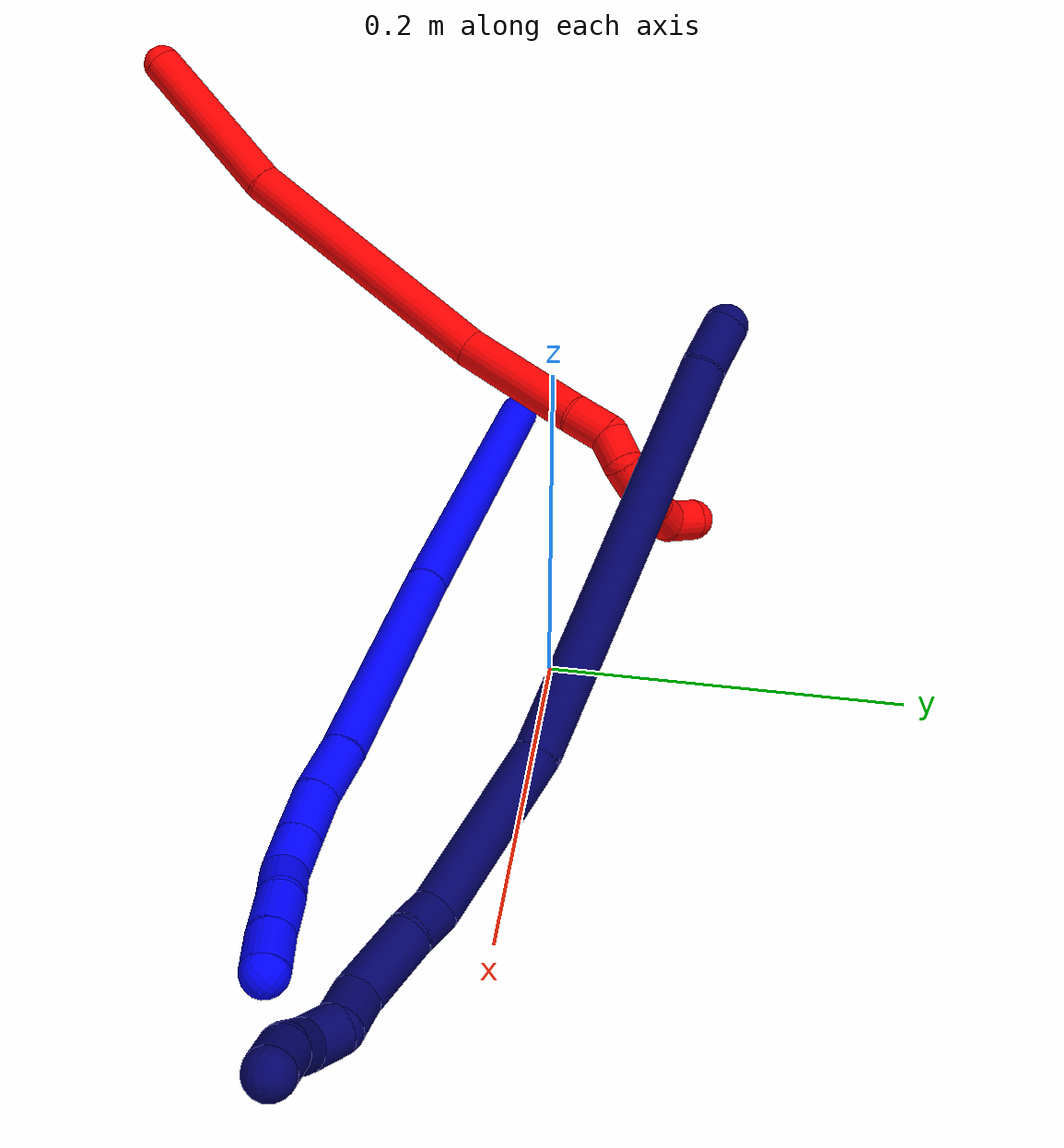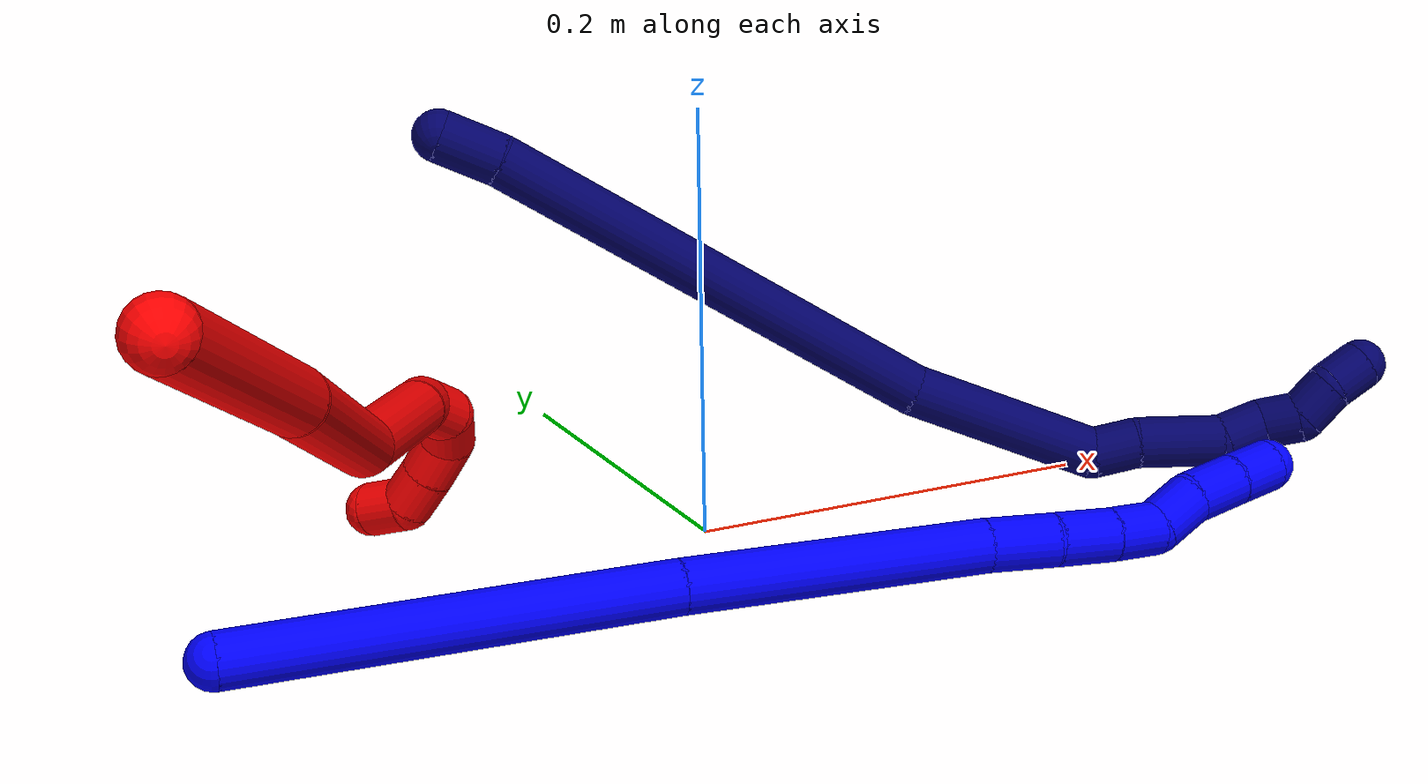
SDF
<sdf version="1.7">
 <world name="default">
  <model name="1">
   <static>0</static>
   <link name="1">
    <collision name="collision-cylinder-e_1_1_4">
     <pose>0.097182 -0.009251 -0.01038 2.41361 1.42869 2.31366</pose>
     <geometry><cylinder><radius>0.0125</radius><length>0.196344</length></cylinder></geometry>
     <surface>
      <friction><ode><mu>1.16</mu><mu2>1.16</mu2><slip1>0</slip1><slip2>0</slip2></ode></friction>
      <contact><ode><kp>1e+06</kp><kd>1</kd><max_vel>0</max_vel><min_depth>0.001</min_depth></ode></contact>
     </surface>
    </collision>
    <visual name="visual-cylinder-e_1_1_4">
     <pose>0.097182 -0.009251 -0.01038 2.41361 1.42869 2.31366</pose>
     <geometry><cylinder><radius>0.0125</radius><length>0.196344</length></cylinder></geometry>
     <material><ambient>0 0 1 1</ambient></material>
    </visual>
    <collision name="collision-cylinder-e_2_4_5">
     <pose>0.264811 -0.026251 -0.030454 2.46732 1.39642 2.35031</pose>
     <geometry><cylinder><radius>0.0125</radius><length>0.143063</length></cylinder></geometry>
     <surface>
      <friction><ode><mu>1.16</mu><mu2>1.16</mu2><slip1>0</slip1><slip2>0</slip2></ode></friction>
      <contact><ode><kp>1e+06</kp><kd>1</kd><max_vel>0</max_vel><min_depth>0.001</min_depth></ode></contact>
     </surface>
    </collision>
    <visual name="visual-cylinder-e_2_4_5">
     <pose>0.264811 -0.026251 -0.030454 2.46732 1.39642 2.35031</pose>
     <geometry><cylinder><radius>0.0125</radius><length>0.143063</length></cylinder></geometry>
     <material><ambient>0 0 1 1</ambient></material>
    </visual>
    <collision name="collision-cylinder-e_3_5_6">
     <pose>0.351437 -0.036861 -0.041654 2.05508 1.37352 1.87197</pose>
     <geometry><cylinder><radius>0.0125</radius><length>0.032998</length></cylinder></geometry>
     <surface>
      <friction><ode><mu>1.16</mu><mu2>1.16</mu2><slip1>0</slip1><slip2>0</slip2></ode></friction>
      <contact><ode><kp>1e+06</kp><kd>1</kd><max_vel>0</max_vel><min_depth>0.001</min_depth></ode></contact>
     </surface>
    </collision>
    <visual name="visual-cylinder-e_3_5_6">
     <pose>0.351437 -0.036861 -0.041654 2.05508 1.37352 1.87197</pose>
     <geometry><cylinder><radius>0.0125</radius><length>0.032998</length></cylinder></geometry>
     <material><ambient>0 0 1 1</ambient></material>
    </visual>
    <collision name="collision-cylinder-e_4_6_7">
     <pose>0.381856 -0.041549 -0.046142 2.59228 1.33001 2.45166</pose>
     <geometry><cylinder><radius>0.0125</radius><length>0.029324</length></cylinder></geometry>
     <surface>
      <friction><ode><mu>1.16</mu><mu2>1.16</mu2><slip1>0</slip1><slip2>0</slip2></ode></friction>
      <contact><ode><kp>1e+06</kp><kd>1</kd><max_vel>0</max_vel><min_depth>0.001</min_depth></ode></contact>
     </surface>
    </collision>
    <visual name="visual-cylinder-e_4_6_7">
     <pose>0.381856 -0.041549 -0.046142 2.59228 1.33001 2.45166</pose>
     <geometry><cylinder><radius>0.0125</radius><length>0.029324</length></cylinder></geometry>
     <material><ambient>0 0 1 1</ambient></material>
    </visual>
    <collision name="collision-cylinder-e_5_7_8">
     <pose>0.407766 -0.044249 -0.051475 2.78546 1.35911 2.70324</pose>
     <geometry><cylinder><radius>0.0125</radius><length>0.023875</length></cylinder></geometry>
     <surface>
      <friction><ode><mu>1.16</mu><mu2>1.16</mu2><slip1>0</slip1><slip2>0</slip2></ode></friction>
      <contact><ode><kp>1e+06</kp><kd>1</kd><max_vel>0</max_vel><min_depth>0.001</min_depth></ode></contact>
     </surface>
    </collision>
    <visual name="visual-cylinder-e_5_7_8">
     <pose>0.407766 -0.044249 -0.051475 2.78546 1.35911 2.70324</pose>
     <geometry><cylinder><radius>0.0125</radius><length>0.023875</length></cylinder></geometry>
     <material><ambient>0 0 1 1</ambient></material>
    </visual>
    <collision name="collision-cylinder-e_6_8_9">
     <pose>0.430803 -0.040374 -0.055229 -1.85814 1.15986 -1.43954</pose>
     <geometry><cylinder><radius>0.0125</radius><length>0.024796</length></cylinder></geometry>
     <surface>
      <friction><ode><mu>1.16</mu><mu2>1.16</mu2><slip1>0</slip1><slip2>0</slip2></ode></friction>
      <contact><ode><kp>1e+06</kp><kd>1</kd><max_vel>0</max_vel><min_depth>0.001</min_depth></ode></contact>
     </surface>
    </collision>
    <visual name="visual-cylinder-e_6_8_9">
     <pose>0.430803 -0.040374 -0.055229 -1.85814 1.15986 -1.43954</pose>
     <geometry><cylinder><radius>0.0125</radius><length>0.024796</length></cylinder></geometry>
     <material><ambient>0 0 1 1</ambient></material>
    </visual>
    <collision name="collision-cylinder-e_7_9_10">
     <pose>0.454956 -0.033658 -0.059045 -2.4578 1.33211 -2.29115</pose>
     <geometry><cylinder><radius>0.0125</radius><length>0.026321</length></cylinder></geometry>
     <surface>
      <friction><ode><mu>1.16</mu><mu2>1.16</mu2><slip1>0</slip1><slip2>0</slip2></ode></friction>
      <contact><ode><kp>1e+06</kp><kd>1</kd><max_vel>0</max_vel><min_depth>0.001</min_depth></ode></contact>
     </surface>
    </collision>
    <visual name="visual-cylinder-e_7_9_10">
     <pose>0.454956 -0.033658 -0.059045 -2.4578 1.33211 -2.29115</pose>
     <geometry><cylinder><radius>0.0125</radius><length>0.026321</length></cylinder></geometry>
     <material><ambient>0 0 1 1</ambient></material>
    </visual>
    <collision name="collision-cylinder-e_8_10_2">
     <pose>0.478834 -0.029885 -0.064489 -2.60405 1.26263 -2.42103</pose>
     <geometry><cylinder><radius>0.0125</radius><length>0.023278</length></cylinder></geometry>
     <surface>
      <friction><ode><mu>1.16</mu><mu2>1.16</mu2><slip1>0</slip1><slip2>0</slip2></ode></friction>
      <contact><ode><kp>1e+06</kp><kd>1</kd><max_vel>0</max_vel><min_depth>0.001</min_depth></ode></contact>
     </surface>
    </collision>
    <visual name="visual-cylinder-e_8_10_2">
     <pose>0.478834 -0.029885 -0.064489 -2.60405 1.26263 -2.42103</pose>
     <geometry><cylinder><radius>0.0125</radius><length>0.023278</length></cylinder></geometry>
     <material><ambient>0 0 1 1</ambient></material>
    </visual>
    <collision name="collision-sphere-2">
     <pose>0.489925 -0.028078 -0.067521 0 -0 0</pose>
     <geometry><sphere><radius>0.0125</radius></sphere></geometry>
     <surface>
      <friction><ode><mu>1.16</mu><mu2>1.16</mu2><slip1>0</slip1><slip2>0</slip2></ode></friction>
      <contact><ode><kp>1e+06</kp><kd>1</kd><max_vel>0</max_vel><min_depth>0.001</min_depth></ode></contact>
     </surface>
    </collision>
    <visual name="visual-sphere-2">
     <pose>0.489925 -0.028078 -0.067521 0 -0 0</pose>
     <geometry><sphere><radius>0.0125</radius></sphere></geometry>
     <material><ambient>0 0 1 1</ambient></material>
    </visual>
    <collision name="collision-sphere-10">
     <pose>0.467744 -0.031693 -0.061457 0 -0 0</pose>
     <geometry><sphere><radius>0.0125</radius></sphere></geometry>
     <surface>
      <friction><ode><mu>1.16</mu><mu2>1.16</mu2><slip1>0</slip1><slip2>0</slip2></ode></friction>
      <contact><ode><kp>1e+06</kp><kd>1</kd><max_vel>0</max_vel><min_depth>0.001</min_depth></ode></contact>
     </surface>
    </collision>
    <visual name="visual-sphere-10">
     <pose>0.467744 -0.031693 -0.061457 0 -0 0</pose>
     <geometry><sphere><radius>0.0125</radius></sphere></geometry>
     <material><ambient>0 0 1 1</ambient></material>
    </visual>
    <collision name="collision-sphere-9">
     <pose>0.442169 -0.035624 -0.056633 0 -0 0</pose>
     <geometry><sphere><radius>0.0125</radius></sphere></geometry>
     <surface>
      <friction><ode><mu>1.16</mu><mu2>1.16</mu2><slip1>0</slip1><slip2>0</slip2></ode></friction>
      <contact><ode><kp>1e+06</kp><kd>1</kd><max_vel>0</max_vel><min_depth>0.001</min_depth></ode></contact>
     </surface>
    </collision>
    <visual name="visual-sphere-9">
     <pose>0.442169 -0.035624 -0.056633 0 -0 0</pose>
     <geometry><sphere><radius>0.0125</radius></sphere></geometry>
     <material><ambient>0 0 1 1</ambient></material>
    </visual>
    <collision name="collision-sphere-4">
     <pose>0.194365 -0.018503 -0.020759 0 -0 0</pose>
     <geometry><sphere><radius>0.0125</radius></sphere></geometry>
     <surface>
      <friction><ode><mu>1.16</mu><mu2>1.16</mu2><slip1>0</slip1><slip2>0</slip2></ode></friction>
      <contact><ode><kp>1e+06</kp><kd>1</kd><max_vel>0</max_vel><min_depth>0.001</min_depth></ode></contact>
     </surface>
    </collision>
    <visual name="visual-sphere-4">
     <pose>0.194365 -0.018503 -0.020759 0 -0 0</pose>
     <geometry><sphere><radius>0.0125</radius></sphere></geometry>
     <material><ambient>0 0 1 1</ambient></material>
    </visual>
    <collision name="collision-sphere-1">
     <geometry><sphere><radius>0.0125</radius></sphere></geometry>
     <surface>
      <friction><ode><mu>1.16</mu><mu2>1.16</mu2><slip1>0</slip1><slip2>0</slip2></ode></friction>
      <contact><ode><kp>1e+06</kp><kd>1</kd><max_vel>0</max_vel><min_depth>0.001</min_depth></ode></contact>
     </surface>
    </collision>
    <visual name="visual-sphere-1">
     <geometry><sphere><radius>0.0125</radius></sphere></geometry>
     <material><ambient>0 0 1 1</ambient></material>
    </visual>
    <collision name="collision-sphere-8">
     <pose>0.419437 -0.045123 -0.053825 0 -0 0</pose>
     <geometry><sphere><radius>0.0125</radius></sphere></geometry>
     <surface>
      <friction><ode><mu>1.16</mu><mu2>1.16</mu2><slip1>0</slip1><slip2>0</slip2></ode></friction>
      <contact><ode><kp>1e+06</kp><kd>1</kd><max_vel>0</max_vel><min_depth>0.001</min_depth></ode></contact>
     </surface>
    </collision>
    <visual name="visual-sphere-8">
     <pose>0.419437 -0.045123 -0.053825 0 -0 0</pose>
     <geometry><sphere><radius>0.0125</radius></sphere></geometry>
     <material><ambient>0 0 1 1</ambient></material>
    </visual>
    <collision name="collision-sphere-5">
     <pose>0.335258 -0.033999 -0.040148 0 -0 0</pose>
     <geometry><sphere><radius>0.0125</radius></sphere></geometry>
     <surface>
      <friction><ode><mu>1.16</mu><mu2>1.16</mu2><slip1>0</slip1><slip2>0</slip2></ode></friction>
      <contact><ode><kp>1e+06</kp><kd>1</kd><max_vel>0</max_vel><min_depth>0.001</min_depth></ode></contact>
     </surface>
    </collision>
    <visual name="visual-sphere-5">
     <pose>0.335258 -0.033999 -0.040148 0 -0 0</pose>
     <geometry><sphere><radius>0.0125</radius></sphere></geometry>
     <material><ambient>0 0 1 1</ambient></material>
    </visual>
    <collision name="collision-sphere-6">
     <pose>0.367617 -0.039723 -0.04316 0 -0 0</pose>
     <geometry><sphere><radius>0.0125</radius></sphere></geometry>
     <surface>
      <friction><ode><mu>1.16</mu><mu2>1.16</mu2><slip1>0</slip1><slip2>0</slip2></ode></friction>
      <contact><ode><kp>1e+06</kp><kd>1</kd><max_vel>0</max_vel><min_depth>0.001</min_depth></ode></contact>
     </surface>
    </collision>
    <visual name="visual-sphere-6">
     <pose>0.367617 -0.039723 -0.04316 0 -0 0</pose>
     <geometry><sphere><radius>0.0125</radius></sphere></geometry>
     <material><ambient>0 0 1 1</ambient></material>
    </visual>
    <collision name="collision-sphere-7">
     <pose>0.396095 -0.043374 -0.049124 0 -0 0</pose>
     <geometry><sphere><radius>0.0125</radius></sphere></geometry>
     <surface>
      <friction><ode><mu>1.16</mu><mu2>1.16</mu2><slip1>0</slip1><slip2>0</slip2></ode></friction>
      <contact><ode><kp>1e+06</kp><kd>1</kd><max_vel>0</max_vel><min_depth>0.001</min_depth></ode></contact>
     </surface>
    </collision>
    <visual name="visual-sphere-7">
     <pose>0.396095 -0.043374 -0.049124 0 -0 0</pose>
     <geometry><sphere><radius>0.0125</radius></sphere></geometry>
     <material><ambient>0 0 1 1</ambient></material>
    </visual>
    <inertial>
     <pose>0.246599 -0.023292 -0.029552 0 -0 0</pose>
     <mass>0.5</mass>
     <inertia>
      <ixx>4.2e-05</ixx>
      <ixy>0</ixy>
      <ixz>0</ixz>
      <iyy>0.000989</iyy>
      <iyz>0</iyz>
      <izz>-0.000812</izz>
     </inertia>
    </inertial>
   </link>
   <pose>-0.244762 -0.054586 0.00603 0.863217 -0.163687 -0.157312</pose>
  </model>
  <model name="2">
   <static>0</static>
   <link name="2">
    <collision name="collision-cylinder-e_1_1_4">
     <pose>-0.015899 0.031822 -0.043032 -2.50485 -0.28877 0.83095</pose>
     <geometry><cylinder><radius>0.0125</radius><length>0.111663</length></cylinder></geometry>
     <surface>
      <friction><ode><mu>1.16</mu><mu2>1.16</mu2><slip1>0</slip1><slip2>0</slip2></ode></friction>
      <contact><ode><kp>1e+06</kp><kd>1</kd><max_vel>0</max_vel><min_depth>0.001</min_depth></ode></contact>
     </surface>
    </collision>
    <visual name="visual-cylinder-e_1_1_4">
     <pose>-0.015899 0.031822 -0.043032 -2.50485 -0.28877 0.83095</pose>
     <geometry><cylinder><radius>0.0125</radius><length>0.111663</length></cylinder></geometry>
     <material><ambient>1 0 0 1</ambient></material>
    </visual>
    <collision name="collision-cylinder-e_2_4_5">
     <pose>-0.044808 0.105408 -0.162466 -2.64133 -0.148308 0.565967</pose>
     <geometry><cylinder><radius>0.0125</radius><length>0.176078</length></cylinder></geometry>
     <surface>
      <friction><ode><mu>1.16</mu><mu2>1.16</mu2><slip1>0</slip1><slip2>0</slip2></ode></friction>
      <contact><ode><kp>1e+06</kp><kd>1</kd><max_vel>0</max_vel><min_depth>0.001</min_depth></ode></contact>
     </surface>
    </collision>
    <visual name="visual-cylinder-e_2_4_5">
     <pose>-0.044808 0.105408 -0.162466 -2.64133 -0.148308 0.565967</pose>
     <geometry><cylinder><radius>0.0125</radius><length>0.176078</length></cylinder></geometry>
     <material><ambient>1 0 0 1</ambient></material>
    </visual>
    <collision name="collision-cylinder-e_3_5_6">
     <pose>-0.073489 0.158426 -0.277221 -2.85618 -0.373685 1.84181</pose>
     <geometry><cylinder><radius>0.0125</radius><length>0.085863</length></cylinder></geometry>
     <surface>
      <friction><ode><mu>1.16</mu><mu2>1.16</mu2><slip1>0</slip1><slip2>0</slip2></ode></friction>
      <contact><ode><kp>1e+06</kp><kd>1</kd><max_vel>0</max_vel><min_depth>0.001</min_depth></ode></contact>
     </surface>
    </collision>
    <visual name="visual-cylinder-e_3_5_6">
     <pose>-0.073489 0.158426 -0.277221 -2.85618 -0.373685 1.84181</pose>
     <geometry><cylinder><radius>0.0125</radius><length>0.085863</length></cylinder></geometry>
     <material><ambient>1 0 0 1</ambient></material>
    </visual>
    <collision name="collision-cylinder-e_4_6_7">
     <pose>-0.091852 0.173676 -0.32744 -2.81671 -0.211665 1.15022</pose>
     <geometry><cylinder><radius>0.0125</radius><length>0.025616</length></cylinder></geometry>
     <surface>
      <friction><ode><mu>1.16</mu><mu2>1.16</mu2><slip1>0</slip1><slip2>0</slip2></ode></friction>
      <contact><ode><kp>1e+06</kp><kd>1</kd><max_vel>0</max_vel><min_depth>0.001</min_depth></ode></contact>
     </surface>
    </collision>
    <visual name="visual-cylinder-e_4_6_7">
     <pose>-0.091852 0.173676 -0.32744 -2.81671 -0.211665 1.15022</pose>
     <geometry><cylinder><radius>0.0125</radius><length>0.025616</length></cylinder></geometry>
     <material><ambient>1 0 0 1</ambient></material>
    </visual>
    <collision name="collision-cylinder-e_5_7_8">
     <pose>-0.09939 0.184229 -0.345269 -2.30882 -0.50058 1.04828</pose>
     <geometry><cylinder><radius>0.0125</radius><length>0.020201</length></cylinder></geometry>
     <surface>
      <friction><ode><mu>1.16</mu><mu2>1.16</mu2><slip1>0</slip1><slip2>0</slip2></ode></friction>
      <contact><ode><kp>1e+06</kp><kd>1</kd><max_vel>0</max_vel><min_depth>0.001</min_depth></ode></contact>
     </surface>
    </collision>
    <visual name="visual-cylinder-e_5_7_8">
     <pose>-0.09939 0.184229 -0.345269 -2.30882 -0.50058 1.04828</pose>
     <geometry><cylinder><radius>0.0125</radius><length>0.020201</length></cylinder></geometry>
     <material><ambient>1 0 0 1</ambient></material>
    </visual>
    <collision name="collision-cylinder-e_6_8_9">
     <pose>-0.103361 0.199031 -0.357209 -2.19801 0.08593 -0.168124</pose>
     <geometry><cylinder><radius>0.0125</radius><length>0.020446</length></cylinder></geometry>
     <surface>
      <friction><ode><mu>1.16</mu><mu2>1.16</mu2><slip1>0</slip1><slip2>0</slip2></ode></friction>
      <contact><ode><kp>1e+06</kp><kd>1</kd><max_vel>0</max_vel><min_depth>0.001</min_depth></ode></contact>
     </surface>
    </collision>
    <visual name="visual-cylinder-e_6_8_9">
     <pose>-0.103361 0.199031 -0.357209 -2.19801 0.08593 -0.168124</pose>
     <geometry><cylinder><radius>0.0125</radius><length>0.020446</length></cylinder></geometry>
     <material><ambient>1 0 0 1</ambient></material>
    </visual>
    <collision name="collision-cylinder-e_7_9_10">
     <pose>-0.096163 0.214382 -0.366474 -2.00421 0.679187 -1.00991</pose>
     <geometry><cylinder><radius>0.0125</radius><length>0.020123</length></cylinder></geometry>
     <surface>
      <friction><ode><mu>1.16</mu><mu2>1.16</mu2><slip1>0</slip1><slip2>0</slip2></ode></friction>
      <contact><ode><kp>1e+06</kp><kd>1</kd><max_vel>0</max_vel><min_depth>0.001</min_depth></ode></contact>
     </surface>
    </collision>
    <visual name="visual-cylinder-e_7_9_10">
     <pose>-0.096163 0.214382 -0.366474 -2.00421 0.679187 -1.00991</pose>
     <geometry><cylinder><radius>0.0125</radius><length>0.020123</length></cylinder></geometry>
     <material><ambient>1 0 0 1</ambient></material>
    </visual>
    <collision name="collision-cylinder-e_8_10_11">
     <pose>-0.083253 0.228163 -0.373241 -2.05119 0.719032 -1.10953</pose>
     <geometry><cylinder><radius>0.0125</radius><length>0.020009</length></cylinder></geometry>
     <surface>
      <friction><ode><mu>1.16</mu><mu2>1.16</mu2><slip1>0</slip1><slip2>0</slip2></ode></friction>
      <contact><ode><kp>1e+06</kp><kd>1</kd><max_vel>0</max_vel><min_depth>0.001</min_depth></ode></contact>
     </surface>
    </collision>
    <visual name="visual-cylinder-e_8_10_11">
     <pose>-0.083253 0.228163 -0.373241 -2.05119 0.719032 -1.10953</pose>
     <geometry><cylinder><radius>0.0125</radius><length>0.020009</length></cylinder></geometry>
     <material><ambient>1 0 0 1</ambient></material>
    </visual>
    <collision name="collision-cylinder-e_9_11_2">
     <pose>-0.069362 0.23584 -0.38348 -2.99461 0.818442 -2.80529</pose>
     <geometry><cylinder><radius>0.0125</radius><length>0.02</length></cylinder></geometry>
     <surface>
      <friction><ode><mu>1.16</mu><mu2>1.16</mu2><slip1>0</slip1><slip2>0</slip2></ode></friction>
      <contact><ode><kp>1e+06</kp><kd>1</kd><max_vel>0</max_vel><min_depth>0.001</min_depth></ode></contact>
     </surface>
    </collision>
    <visual name="visual-cylinder-e_9_11_2">
     <pose>-0.069362 0.23584 -0.38348 -2.99461 0.818442 -2.80529</pose>
     <geometry><cylinder><radius>0.0125</radius><length>0.02</length></cylinder></geometry>
     <material><ambient>1 0 0 1</ambient></material>
    </visual>
    <collision name="collision-sphere-2">
     <pose>-0.062061 0.236841 -0.39024 0 -0 0</pose>
     <geometry><sphere><radius>0.0125</radius></sphere></geometry>
     <surface>
      <friction><ode><mu>1.16</mu><mu2>1.16</mu2><slip1>0</slip1><slip2>0</slip2></ode></friction>
      <contact><ode><kp>1e+06</kp><kd>1</kd><max_vel>0</max_vel><min_depth>0.001</min_depth></ode></contact>
     </surface>
    </collision>
    <visual name="visual-sphere-2">
     <pose>-0.062061 0.236841 -0.39024 0 -0 0</pose>
     <geometry><sphere><radius>0.0125</radius></sphere></geometry>
     <material><ambient>1 0 0 1</ambient></material>
    </visual>
    <collision name="collision-sphere-11">
     <pose>-0.076663 0.234839 -0.37672 0 -0 0</pose>
     <geometry><sphere><radius>0.0125</radius></sphere></geometry>
     <surface>
      <friction><ode><mu>1.16</mu><mu2>1.16</mu2><slip1>0</slip1><slip2>0</slip2></ode></friction>
      <contact><ode><kp>1e+06</kp><kd>1</kd><max_vel>0</max_vel><min_depth>0.001</min_depth></ode></contact>
     </surface>
    </collision>
    <visual name="visual-sphere-11">
     <pose>-0.076663 0.234839 -0.37672 0 -0 0</pose>
     <geometry><sphere><radius>0.0125</radius></sphere></geometry>
     <material><ambient>1 0 0 1</ambient></material>
    </visual>
    <collision name="collision-sphere-10">
     <pose>-0.089843 0.221487 -0.369762 0 -0 0</pose>
     <geometry><sphere><radius>0.0125</radius></sphere></geometry>
     <surface>
      <friction><ode><mu>1.16</mu><mu2>1.16</mu2><slip1>0</slip1><slip2>0</slip2></ode></friction>
      <contact><ode><kp>1e+06</kp><kd>1</kd><max_vel>0</max_vel><min_depth>0.001</min_depth></ode></contact>
     </surface>
    </collision>
    <visual name="visual-sphere-10">
     <pose>-0.089843 0.221487 -0.369762 0 -0 0</pose>
     <geometry><sphere><radius>0.0125</radius></sphere></geometry>
     <material><ambient>1 0 0 1</ambient></material>
    </visual>
    <collision name="collision-sphere-9">
     <pose>-0.102483 0.207277 -0.363186 0 -0 0</pose>
     <geometry><sphere><radius>0.0125</radius></sphere></geometry>
     <surface>
      <friction><ode><mu>1.16</mu><mu2>1.16</mu2><slip1>0</slip1><slip2>0</slip2></ode></friction>
      <contact><ode><kp>1e+06</kp><kd>1</kd><max_vel>0</max_vel><min_depth>0.001</min_depth></ode></contact>
     </surface>
    </collision>
    <visual name="visual-sphere-9">
     <pose>-0.102483 0.207277 -0.363186 0 -0 0</pose>
     <geometry><sphere><radius>0.0125</radius></sphere></geometry>
     <material><ambient>1 0 0 1</ambient></material>
    </visual>
    <collision name="collision-sphere-4">
     <pose>-0.031799 0.063643 -0.086064 0 -0 0</pose>
     <geometry><sphere><radius>0.0125</radius></sphere></geometry>
     <surface>
      <friction><ode><mu>1.16</mu><mu2>1.16</mu2><slip1>0</slip1><slip2>0</slip2></ode></friction>
      <contact><ode><kp>1e+06</kp><kd>1</kd><max_vel>0</max_vel><min_depth>0.001</min_depth></ode></contact>
     </surface>
    </collision>
    <visual name="visual-sphere-4">
     <pose>-0.031799 0.063643 -0.086064 0 -0 0</pose>
     <geometry><sphere><radius>0.0125</radius></sphere></geometry>
     <material><ambient>1 0 0 1</ambient></material>
    </visual>
    <collision name="collision-sphere-1">
     <geometry><sphere><radius>0.0125</radius></sphere></geometry>
     <surface>
      <friction><ode><mu>1.16</mu><mu2>1.16</mu2><slip1>0</slip1><slip2>0</slip2></ode></friction>
      <contact><ode><kp>1e+06</kp><kd>1</kd><max_vel>0</max_vel><min_depth>0.001</min_depth></ode></contact>
     </surface>
    </collision>
    <visual name="visual-sphere-1">
     <geometry><sphere><radius>0.0125</radius></sphere></geometry>
     <material><ambient>1 0 0 1</ambient></material>
    </visual>
    <collision name="collision-sphere-8">
     <pose>-0.104238 0.190784 -0.351231 0 -0 0</pose>
     <geometry><sphere><radius>0.0125</radius></sphere></geometry>
     <surface>
      <friction><ode><mu>1.16</mu><mu2>1.16</mu2><slip1>0</slip1><slip2>0</slip2></ode></friction>
      <contact><ode><kp>1e+06</kp><kd>1</kd><max_vel>0</max_vel><min_depth>0.001</min_depth></ode></contact>
     </surface>
    </collision>
    <visual name="visual-sphere-8">
     <pose>-0.104238 0.190784 -0.351231 0 -0 0</pose>
     <geometry><sphere><radius>0.0125</radius></sphere></geometry>
     <material><ambient>1 0 0 1</ambient></material>
    </visual>
    <collision name="collision-sphere-5">
     <pose>-0.057817 0.147172 -0.238868 0 -0 0</pose>
     <geometry><sphere><radius>0.0125</radius></sphere></geometry>
     <surface>
      <friction><ode><mu>1.16</mu><mu2>1.16</mu2><slip1>0</slip1><slip2>0</slip2></ode></friction>
      <contact><ode><kp>1e+06</kp><kd>1</kd><max_vel>0</max_vel><min_depth>0.001</min_depth></ode></contact>
     </surface>
    </collision>
    <visual name="visual-sphere-5">
     <pose>-0.057817 0.147172 -0.238868 0 -0 0</pose>
     <geometry><sphere><radius>0.0125</radius></sphere></geometry>
     <material><ambient>1 0 0 1</ambient></material>
    </visual>
    <collision name="collision-sphere-6">
     <pose>-0.089161 0.169679 -0.315573 0 -0 0</pose>
     <geometry><sphere><radius>0.0125</radius></sphere></geometry>
     <surface>
      <friction><ode><mu>1.16</mu><mu2>1.16</mu2><slip1>0</slip1><slip2>0</slip2></ode></friction>
      <contact><ode><kp>1e+06</kp><kd>1</kd><max_vel>0</max_vel><min_depth>0.001</min_depth></ode></contact>
     </surface>
    </collision>
    <visual name="visual-sphere-6">
     <pose>-0.089161 0.169679 -0.315573 0 -0 0</pose>
     <geometry><sphere><radius>0.0125</radius></sphere></geometry>
     <material><ambient>1 0 0 1</ambient></material>
    </visual>
    <collision name="collision-sphere-7">
     <pose>-0.094543 0.177673 -0.339307 0 -0 0</pose>
     <geometry><sphere><radius>0.0125</radius></sphere></geometry>
     <surface>
      <friction><ode><mu>1.16</mu><mu2>1.16</mu2><slip1>0</slip1><slip2>0</slip2></ode></friction>
      <contact><ode><kp>1e+06</kp><kd>1</kd><max_vel>0</max_vel><min_depth>0.001</min_depth></ode></contact>
     </surface>
    </collision>
    <visual name="visual-sphere-7">
     <pose>-0.094543 0.177673 -0.339307 0 -0 0</pose>
     <geometry><sphere><radius>0.0125</radius></sphere></geometry>
     <material><ambient>1 0 0 1</ambient></material>
    </visual>
    <inertial>
     <pose>-0.054874 0.123105 -0.204787 0 -0 0</pose>
     <mass>0.5</mass>
     <inertia>
      <ixx>0.000829</ixx>
      <ixy>0</ixy>
      <ixz>0</ixz>
      <iyy>4.6e-05</iyy>
      <iyz>0</iyz>
      <izz>-0.000217</izz>
     </inertia>
    </inertial>
   </link>
   <pose>-0.311716 -0.302491 0.215389 -1.59005 0.276244 3.00374</pose>
  </model>
  <model name="7">
   <static>0</static>
   <link name="7">
    <collision name="collision-cylinder-e_1_1_4">
     <pose>0.013519 -0.0059 0.002207 1.21288 1.13472 0.832395</pose>
     <geometry><cylinder><radius>0.0125</radius><length>0.029829</length></cylinder></geometry>
     <surface>
      <friction><ode><mu>1.16</mu><mu2>1.16</mu2><slip1>0</slip1><slip2>0</slip2></ode></friction>
      <contact><ode><kp>1e+06</kp><kd>1</kd><max_vel>0</max_vel><min_depth>0.001</min_depth></ode></contact>
     </surface>
    </collision>
    <visual name="visual-cylinder-e_1_1_4">
     <pose>0.013519 -0.0059 0.002207 1.21288 1.13472 0.832395</pose>
     <geometry><cylinder><radius>0.0125</radius><length>0.029829</length></cylinder></geometry>
     <material><ambient>0.003922 0 0.403922 1</ambient></material>
    </visual>
    <collision name="collision-cylinder-e_2_4_5">
     <pose>0.123088 -0.070295 0.024258 1.24373 0.999295 0.745836</pose>
     <geometry><cylinder><radius>0.0125</radius><length>0.228395</length></cylinder></geometry>
     <surface>
      <friction><ode><mu>1.16</mu><mu2>1.16</mu2><slip1>0</slip1><slip2>0</slip2></ode></friction>
      <contact><ode><kp>1e+06</kp><kd>1</kd><max_vel>0</max_vel><min_depth>0.001</min_depth></ode></contact>
     </surface>
    </collision>
    <visual name="visual-cylinder-e_2_4_5">
     <pose>0.123088 -0.070295 0.024258 1.24373 0.999295 0.745836</pose>
     <geometry><cylinder><radius>0.0125</radius><length>0.228395</length></cylinder></geometry>
     <material><ambient>0.003922 0 0.403922 1</ambient></material>
    </visual>
    <collision name="collision-cylinder-e_3_5_6">
     <pose>0.262859 -0.143588 0.053418 1.00893 1.19033 0.715466</pose>
     <geometry><cylinder><radius>0.0125</radius><length>0.094176</length></cylinder></geometry>
     <surface>
      <friction><ode><mu>1.16</mu><mu2>1.16</mu2><slip1>0</slip1><slip2>0</slip2></ode></friction>
      <contact><ode><kp>1e+06</kp><kd>1</kd><max_vel>0</max_vel><min_depth>0.001</min_depth></ode></contact>
     </surface>
    </collision>
    <visual name="visual-cylinder-e_3_5_6">
     <pose>0.262859 -0.143588 0.053418 1.00893 1.19033 0.715466</pose>
     <geometry><cylinder><radius>0.0125</radius><length>0.094176</length></cylinder></geometry>
     <material><ambient>0.003922 0 0.403922 1</ambient></material>
    </visual>
    <collision name="collision-cylinder-e_4_6_7">
     <pose>0.317737 -0.156503 0.06162 -2.10518 1.37717 -1.92977</pose>
     <geometry><cylinder><radius>0.0125</radius><length>0.02274</length></cylinder></geometry>
     <surface>
      <friction><ode><mu>1.16</mu><mu2>1.16</mu2><slip1>0</slip1><slip2>0</slip2></ode></friction>
      <contact><ode><kp>1e+06</kp><kd>1</kd><max_vel>0</max_vel><min_depth>0.001</min_depth></ode></contact>
     </surface>
    </collision>
    <visual name="visual-cylinder-e_4_6_7">
     <pose>0.317737 -0.156503 0.06162 -2.10518 1.37717 -1.92977</pose>
     <geometry><cylinder><radius>0.0125</radius><length>0.02274</length></cylinder></geometry>
     <material><ambient>0.003922 0 0.403922 1</ambient></material>
    </visual>
    <collision name="collision-cylinder-e_5_7_8">
     <pose>0.34974 -0.15482 0.060673 0.873642 1.55827 0.864076</pose>
     <geometry><cylinder><radius>0.0125</radius><length>0.041693</length></cylinder></geometry>
     <surface>
      <friction><ode><mu>1.16</mu><mu2>1.16</mu2><slip1>0</slip1><slip2>0</slip2></ode></friction>
      <contact><ode><kp>1e+06</kp><kd>1</kd><max_vel>0</max_vel><min_depth>0.001</min_depth></ode></contact>
     </surface>
    </collision>
    <visual name="visual-cylinder-e_5_7_8">
     <pose>0.34974 -0.15482 0.060673 0.873642 1.55827 0.864076</pose>
     <geometry><cylinder><radius>0.0125</radius><length>0.041693</length></cylinder></geometry>
     <material><ambient>0.003922 0 0.403922 1</ambient></material>
    </visual>
    <collision name="collision-cylinder-e_6_8_9">
     <pose>0.381322 -0.153761 0.056919 -2.83102 1.20449 -2.69379</pose>
     <geometry><cylinder><radius>0.0125</radius><length>0.023002</length></cylinder></geometry>
     <surface>
      <friction><ode><mu>1.16</mu><mu2>1.16</mu2><slip1>0</slip1><slip2>0</slip2></ode></friction>
      <contact><ode><kp>1e+06</kp><kd>1</kd><max_vel>0</max_vel><min_depth>0.001</min_depth></ode></contact>
     </surface>
    </collision>
    <visual name="visual-cylinder-e_6_8_9">
     <pose>0.381322 -0.153761 0.056919 -2.83102 1.20449 -2.69379</pose>
     <geometry><cylinder><radius>0.0125</radius><length>0.023002</length></cylinder></geometry>
     <material><ambient>0.003922 0 0.403922 1</ambient></material>
    </visual>
    <collision name="collision-cylinder-e_7_9_10">
     <pose>0.401456 -0.149282 0.054281 -1.19117 1.21726 -0.882419</pose>
     <geometry><cylinder><radius>0.0125</radius><length>0.020031</length></cylinder></geometry>
     <surface>
      <friction><ode><mu>1.16</mu><mu2>1.16</mu2><slip1>0</slip1><slip2>0</slip2></ode></friction>
      <contact><ode><kp>1e+06</kp><kd>1</kd><max_vel>0</max_vel><min_depth>0.001</min_depth></ode></contact>
     </surface>
    </collision>
    <visual name="visual-cylinder-e_7_9_10">
     <pose>0.401456 -0.149282 0.054281 -1.19117 1.21726 -0.882419</pose>
     <geometry><cylinder><radius>0.0125</radius><length>0.020031</length></cylinder></geometry>
     <material><ambient>0.003922 0 0.403922 1</ambient></material>
    </visual>
    <collision name="collision-cylinder-e_8_10_11">
     <pose>0.417884 -0.14009 0.051613 -2.15562 0.776265 -1.3011</pose>
     <geometry><cylinder><radius>0.0125</radius><length>0.020073</length></cylinder></geometry>
     <surface>
      <friction><ode><mu>1.16</mu><mu2>1.16</mu2><slip1>0</slip1><slip2>0</slip2></ode></friction>
      <contact><ode><kp>1e+06</kp><kd>1</kd><max_vel>0</max_vel><min_depth>0.001</min_depth></ode></contact>
     </surface>
    </collision>
    <visual name="visual-cylinder-e_8_10_11">
     <pose>0.417884 -0.14009 0.051613 -2.15562 0.776265 -1.3011</pose>
     <geometry><cylinder><radius>0.0125</radius><length>0.020073</length></cylinder></geometry>
     <material><ambient>0.003922 0 0.403922 1</ambient></material>
    </visual>
    <collision name="collision-cylinder-e_9_11_2">
     <pose>0.43335 -0.131465 0.042923 -2.63088 0.998827 -2.24894</pose>
     <geometry><cylinder><radius>0.0125</radius><length>0.020061</length></cylinder></geometry>
     <surface>
      <friction><ode><mu>1.16</mu><mu2>1.16</mu2><slip1>0</slip1><slip2>0</slip2></ode></friction>
      <contact><ode><kp>1e+06</kp><kd>1</kd><max_vel>0</max_vel><min_depth>0.001</min_depth></ode></contact>
     </surface>
    </collision>
    <visual name="visual-cylinder-e_9_11_2">
     <pose>0.43335 -0.131465 0.042923 -2.63088 0.998827 -2.24894</pose>
     <geometry><cylinder><radius>0.0125</radius><length>0.020061</length></cylinder></geometry>
     <material><ambient>0.003922 0 0.403922 1</ambient></material>
    </visual>
    <collision name="collision-sphere-2">
     <pose>0.441784 -0.128811 0.038186 0 -0 0</pose>
     <geometry><sphere><radius>0.0125</radius></sphere></geometry>
     <surface>
      <friction><ode><mu>1.16</mu><mu2>1.16</mu2><slip1>0</slip1><slip2>0</slip2></ode></friction>
      <contact><ode><kp>1e+06</kp><kd>1</kd><max_vel>0</max_vel><min_depth>0.001</min_depth></ode></contact>
     </surface>
    </collision>
    <visual name="visual-sphere-2">
     <pose>0.441784 -0.128811 0.038186 0 -0 0</pose>
     <geometry><sphere><radius>0.0125</radius></sphere></geometry>
     <material><ambient>0.003922 0 0.403922 1</ambient></material>
    </visual>
    <collision name="collision-sphere-11">
     <pose>0.424916 -0.134119 0.047659 0 -0 0</pose>
     <geometry><sphere><radius>0.0125</radius></sphere></geometry>
     <surface>
      <friction><ode><mu>1.16</mu><mu2>1.16</mu2><slip1>0</slip1><slip2>0</slip2></ode></friction>
      <contact><ode><kp>1e+06</kp><kd>1</kd><max_vel>0</max_vel><min_depth>0.001</min_depth></ode></contact>
     </surface>
    </collision>
    <visual name="visual-sphere-11">
     <pose>0.424916 -0.134119 0.047659 0 -0 0</pose>
     <geometry><sphere><radius>0.0125</radius></sphere></geometry>
     <material><ambient>0.003922 0 0.403922 1</ambient></material>
    </visual>
    <collision name="collision-sphere-10">
     <pose>0.410852 -0.146061 0.055566 0 -0 0</pose>
     <geometry><sphere><radius>0.0125</radius></sphere></geometry>
     <surface>
      <friction><ode><mu>1.16</mu><mu2>1.16</mu2><slip1>0</slip1><slip2>0</slip2></ode></friction>
      <contact><ode><kp>1e+06</kp><kd>1</kd><max_vel>0</max_vel><min_depth>0.001</min_depth></ode></contact>
     </surface>
    </collision>
    <visual name="visual-sphere-10">
     <pose>0.410852 -0.146061 0.055566 0 -0 0</pose>
     <geometry><sphere><radius>0.0125</radius></sphere></geometry>
     <material><ambient>0.003922 0 0.403922 1</ambient></material>
    </visual>
    <collision name="collision-sphere-9">
     <pose>0.39206 -0.152503 0.052996 0 -0 0</pose>
     <geometry><sphere><radius>0.0125</radius></sphere></geometry>
     <surface>
      <friction><ode><mu>1.16</mu><mu2>1.16</mu2><slip1>0</slip1><slip2>0</slip2></ode></friction>
      <contact><ode><kp>1e+06</kp><kd>1</kd><max_vel>0</max_vel><min_depth>0.001</min_depth></ode></contact>
     </surface>
    </collision>
    <visual name="visual-sphere-9">
     <pose>0.39206 -0.152503 0.052996 0 -0 0</pose>
     <geometry><sphere><radius>0.0125</radius></sphere></geometry>
     <material><ambient>0.003922 0 0.403922 1</ambient></material>
    </visual>
    <collision name="collision-sphere-4">
     <pose>0.027037 -0.011801 0.004414 0 -0 0</pose>
     <geometry><sphere><radius>0.0125</radius></sphere></geometry>
     <surface>
      <friction><ode><mu>1.16</mu><mu2>1.16</mu2><slip1>0</slip1><slip2>0</slip2></ode></friction>
      <contact><ode><kp>1e+06</kp><kd>1</kd><max_vel>0</max_vel><min_depth>0.001</min_depth></ode></contact>
     </surface>
    </collision>
    <visual name="visual-sphere-4">
     <pose>0.027037 -0.011801 0.004414 0 -0 0</pose>
     <geometry><sphere><radius>0.0125</radius></sphere></geometry>
     <material><ambient>0.003922 0 0.403922 1</ambient></material>
    </visual>
    <collision name="collision-sphere-1">
     <geometry><sphere><radius>0.0125</radius></sphere></geometry>
     <surface>
      <friction><ode><mu>1.16</mu><mu2>1.16</mu2><slip1>0</slip1><slip2>0</slip2></ode></friction>
      <contact><ode><kp>1e+06</kp><kd>1</kd><max_vel>0</max_vel><min_depth>0.001</min_depth></ode></contact>
     </surface>
    </collision>
    <visual name="visual-sphere-1">
     <geometry><sphere><radius>0.0125</radius></sphere></geometry>
     <material><ambient>0.003922 0 0.403922 1</ambient></material>
    </visual>
    <collision name="collision-sphere-8">
     <pose>0.370584 -0.15502 0.060841 0 -0 0</pose>
     <geometry><sphere><radius>0.0125</radius></sphere></geometry>
     <surface>
      <friction><ode><mu>1.16</mu><mu2>1.16</mu2><slip1>0</slip1><slip2>0</slip2></ode></friction>
      <contact><ode><kp>1e+06</kp><kd>1</kd><max_vel>0</max_vel><min_depth>0.001</min_depth></ode></contact>
     </surface>
    </collision>
    <visual name="visual-sphere-8">
     <pose>0.370584 -0.15502 0.060841 0 -0 0</pose>
     <geometry><sphere><radius>0.0125</radius></sphere></geometry>
     <material><ambient>0.003922 0 0.403922 1</ambient></material>
    </visual>
    <collision name="collision-sphere-5">
     <pose>0.219138 -0.12879 0.044102 0 -0 0</pose>
     <geometry><sphere><radius>0.0125</radius></sphere></geometry>
     <surface>
      <friction><ode><mu>1.16</mu><mu2>1.16</mu2><slip1>0</slip1><slip2>0</slip2></ode></friction>
      <contact><ode><kp>1e+06</kp><kd>1</kd><max_vel>0</max_vel><min_depth>0.001</min_depth></ode></contact>
     </surface>
    </collision>
    <visual name="visual-sphere-5">
     <pose>0.219138 -0.12879 0.044102 0 -0 0</pose>
     <geometry><sphere><radius>0.0125</radius></sphere></geometry>
     <material><ambient>0.003922 0 0.403922 1</ambient></material>
    </visual>
    <collision name="collision-sphere-6">
     <pose>0.306579 -0.158385 0.062734 0 -0 0</pose>
     <geometry><sphere><radius>0.0125</radius></sphere></geometry>
     <surface>
      <friction><ode><mu>1.16</mu><mu2>1.16</mu2><slip1>0</slip1><slip2>0</slip2></ode></friction>
      <contact><ode><kp>1e+06</kp><kd>1</kd><max_vel>0</max_vel><min_depth>0.001</min_depth></ode></contact>
     </surface>
    </collision>
    <visual name="visual-sphere-6">
     <pose>0.306579 -0.158385 0.062734 0 -0 0</pose>
     <geometry><sphere><radius>0.0125</radius></sphere></geometry>
     <material><ambient>0.003922 0 0.403922 1</ambient></material>
    </visual>
    <collision name="collision-sphere-7">
     <pose>0.328895 -0.15462 0.060505 0 -0 0</pose>
     <geometry><sphere><radius>0.0125</radius></sphere></geometry>
     <surface>
      <friction><ode><mu>1.16</mu><mu2>1.16</mu2><slip1>0</slip1><slip2>0</slip2></ode></friction>
      <contact><ode><kp>1e+06</kp><kd>1</kd><max_vel>0</max_vel><min_depth>0.001</min_depth></ode></contact>
     </surface>
    </collision>
    <visual name="visual-sphere-7">
     <pose>0.328895 -0.15462 0.060505 0 -0 0</pose>
     <geometry><sphere><radius>0.0125</radius></sphere></geometry>
     <material><ambient>0.003922 0 0.403922 1</ambient></material>
    </visual>
    <inertial>
     <pose>0.217945 -0.103488 0.037723 0 -0 0</pose>
     <mass>0.5</mass>
     <inertia>
      <ixx>0.000837</ixx>
      <ixy>0</ixy>
      <ixz>0</ixz>
      <iyy>0.001237</iyy>
      <iyz>0</iyz>
      <izz>-0.00039</izz>
     </inertia>
    </inertial>
   </link>
   <pose>-0.091921 0.083494 0.181383 2.01371 -0.012832 -0.41033</pose>
  </model>
 </world>
</sdf>
